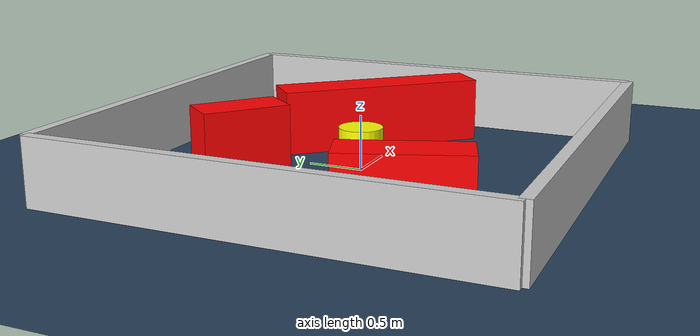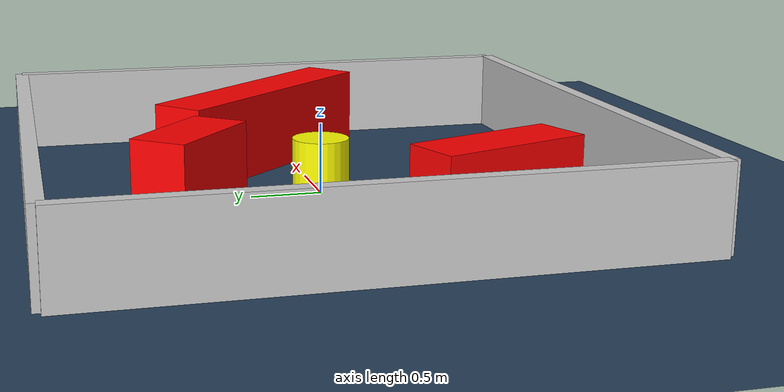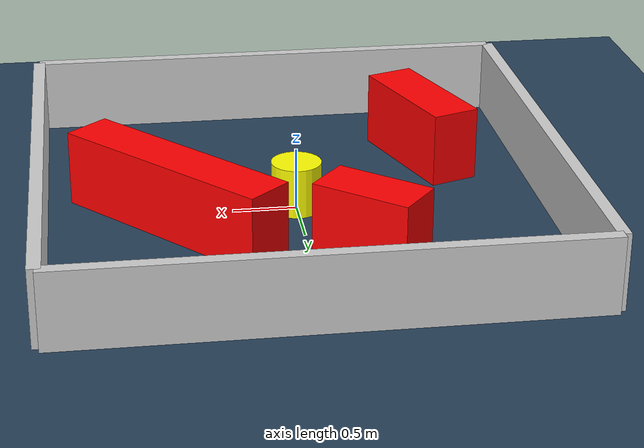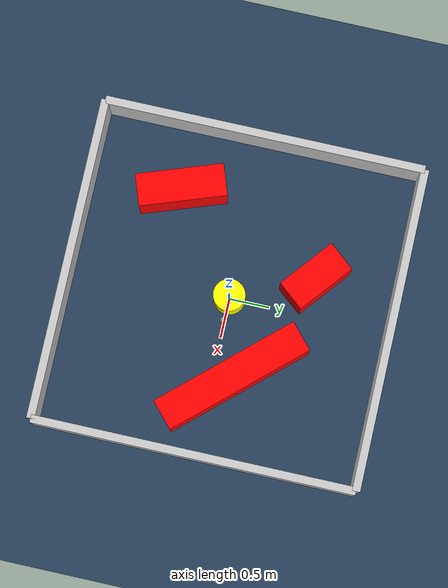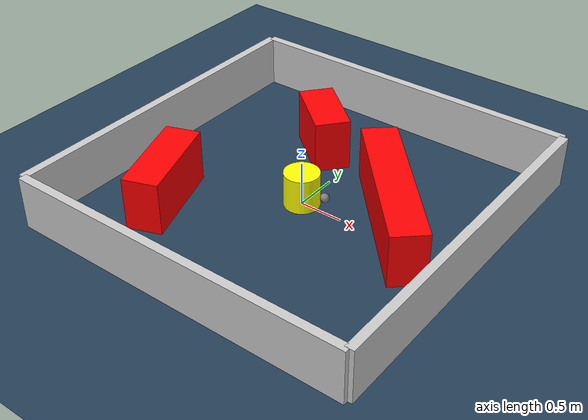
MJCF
<?xml version="1.0" ?>
<mujoco model="generated_environment">
  <option timestep="0.01" integrator="RK4" cone="elliptic"/>
  <default>
    <geom density="1"/>
  </default>
  <asset>
    <texture builtin="gradient" height="3072" rgb1="0.3 0.5 0.7" rgb2="0 0 0" type="skybox" width="512"/>
    <texture builtin="checker" height="300" mark="edge" markrgb="0.8 0.8 0.8" name="groundplane" rgb1="0.2 0.3 0.4" rgb2="0.1 0.2 0.3" type="2d" width="300"/>
    <material name="groundplane" reflectance="0.2" texrepeat="5 5" texture="groundplane" texuniform="true"/>
    <material name="robot" rgba="0.0 1.0 0.0 1"/>
  </asset>
  <worldbody>
    <light dir="0 0 -1" directional="true" pos="0 0 1.5"/>
    <geom condim="4" friction="1.0 0.005 0.001" material="groundplane" name="floor" size="0 0 0.05" type="plane"/>
    <body name="walls">
      <geom name="wall_1" condim="4" pos="-2.0 0.0 0.3" rgba="0.800000011920929 0.800000011920929 0.800000011920929 1.0" size="0.05 2.0 0.3" type="box"/>
      <geom name="wall_2" condim="4" pos="2.0 0.0 0.3" rgba="0.800000011920929 0.800000011920929 0.800000011920929 1.0" size="0.05 2.0 0.3" type="box"/>
      <geom name="wall_3" condim="4" pos="0.0 -2.0 0.3" rgba="0.800000011920929 0.800000011920929 0.800000011920929 1.0" size="2.0 0.05 0.3" type="box"/>
      <geom name="wall_4" condim="4" pos="0.0 2.0 0.3" rgba="0.800000011920929 0.800000011920929 0.800000011920929 1.0" size="2.0 0.05 0.3" type="box"/>
    </body>
    <body name="robot">
      <joint name="joint_x" type="slide" pos="0 0 0" axis="1 0 0"/>
      <joint name="joint_y" type="slide" pos="0 0 0" axis="0 1 0"/>
      <geom name="robot" type="sphere" pos="0.3 0.0 0.2" size="0.05" mass="5." friction="1.0 0.005 0.0001" condim="4" rgba="0.5 0.5 0.5 1.0"/>
      <site name="sensor_ball"/>
    </body>
    <body name="obstacle_movable_1">
      <geom name="obstacle_movable_1" condim="4" pos="0.0 0.0 0.2" euler="0 0 0.0" friction="1.0 0.005 0.001" rgba="1.0 1.0 0.0 1.0" size="0.2 0.2 0.0" type="cylinder" mass="0.1"/>
      <joint type="free"/>
    </body>
    <body name="obstacle_2_static">
      <geom name="obstacle_2_static" condim="4" pos="-0.4320989217016624 0.9808385444834757 0.3" euler="0 0 140.60259014739725" friction="1.0 0.005 0.001" rgba="1 0 0 1" size="0.39646259891227476 0.2 0.3" type="box"/>
    </body>
    <body name="obstacle_3_static">
      <geom name="obstacle_3_static" condim="4" pos="-1.1703827261853446 -0.8611419795211475 0.3" euler="0 0 289.54326396701515" friction="1.0 0.005 0.001" rgba="1 0 0 1" size="0.5444123848926401 0.2 0.3" type="box"/>
    </body>
    <body name="obstacle_4_static">
      <geom name="obstacle_4_static" condim="4" pos="0.9674676764755896 0.24757136791305112 0.3" euler="0 0 312.1286613155897" friction="1.0 0.005 0.001" rgba="1 0 0 1" size="0.968497921138612 0.2 0.3" type="box"/>
    </body>
  </worldbody>
  <actuator>
    <motor name="actuator_x" joint="joint_x" gear="1" ctrlrange="-1 1"/>
    <motor name="actuator_y" joint="joint_y" gear="1" ctrlrange="-1 1"/>
  </actuator>
</mujoco>
